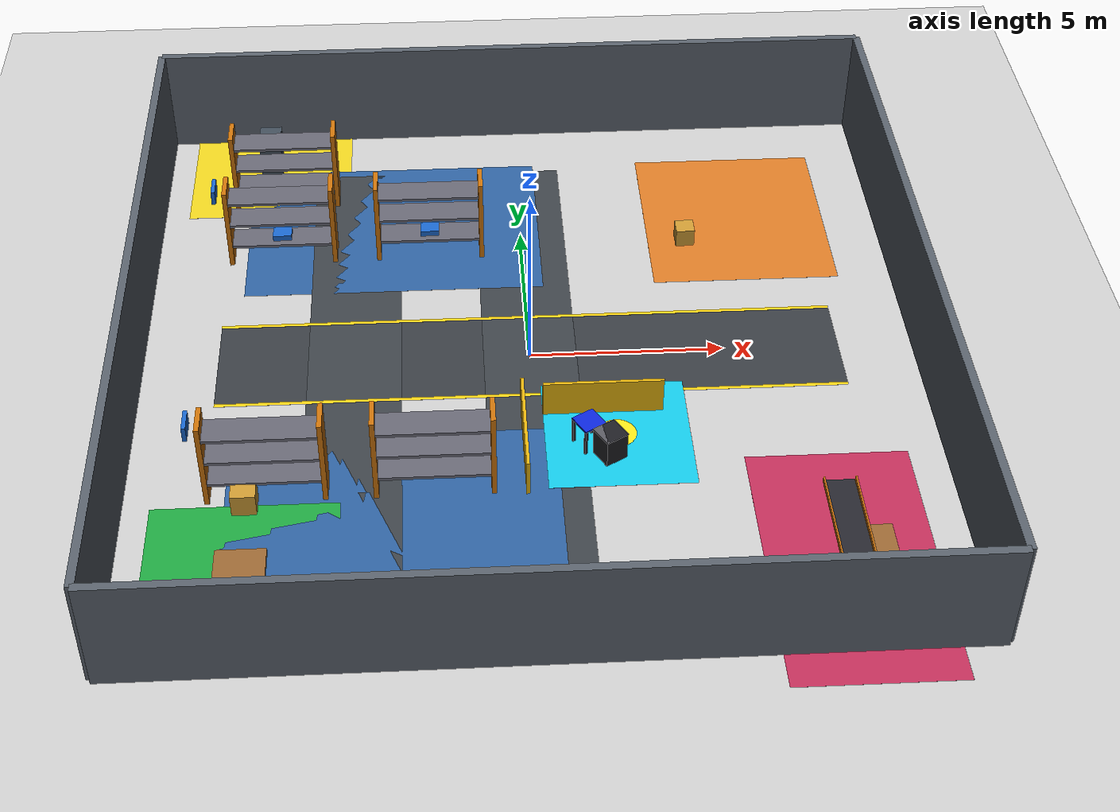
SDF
<sdf version="1.7">
 <world name="warehouse_remodel">
  <include><uri>model://sun</uri></include>
  <include><uri>model://ground_plane</uri></include>
  <model name="wall_left">
   <static>true</static>
   <link name="link">
    <collision name="collision"><geometry><box><size>20 0.2 3.0</size></box></geometry></collision>
    <visual name="visual">
     <geometry><box><size>20 0.2 3.0</size></box></geometry>
     <material><ambient>0.25 0.28 0.32 1</ambient><diffuse>0.35 0.38 0.42 1</diffuse></material>
    </visual>
    <pose>0 -10 1.5 0 0 0</pose>
   </link>
  </model>
  <model name="wall_right">
   <static>true</static>
   <link name="link">
    <collision name="collision"><geometry><box><size>20 0.2 3.0</size></box></geometry></collision>
    <visual name="visual">
     <geometry><box><size>20 0.2 3.0</size></box></geometry>
     <material><ambient>0.25 0.28 0.32 1</ambient><diffuse>0.35 0.38 0.42 1</diffuse></material>
    </visual>
    <pose>0 10 1.5 0 0 0</pose>
   </link>
  </model>
  <model name="wall_front">
   <static>true</static>
   <link name="link">
    <collision name="collision"><geometry><box><size>0.2 20 3.0</size></box></geometry></collision>
    <visual name="visual">
     <geometry><box><size>0.2 20 3.0</size></box></geometry>
     <material><ambient>0.25 0.28 0.32 1</ambient><diffuse>0.35 0.38 0.42 1</diffuse></material>
    </visual>
    <pose>10 0 1.5 0 0 0</pose>
   </link>
  </model>
  <model name="wall_back">
   <static>true</static>
   <link name="link">
    <collision name="collision"><geometry><box><size>0.2 20 3.0</size></box></geometry></collision>
    <visual name="visual">
     <geometry><box><size>0.2 20 3.0</size></box></geometry>
     <material><ambient>0.25 0.28 0.32 1</ambient><diffuse>0.35 0.38 0.42 1</diffuse></material>
    </visual>
    <pose>-10 0 1.5 0 0 0</pose>
   </link>
  </model>
  <model name="marking_main_aisle">
   <static>true</static>
   <pose>0 0 0.005 0 0 0</pose>
   <link name="link">
    <visual name="visual">
     <geometry><box><size>16.0 3.0 0.002</size></box></geometry>
     <material><ambient>0.15 0.16 0.18 1</ambient><diffuse>0.22 0.24 0.26 1</diffuse></material>
    </visual>
   </link>
  </model>
  <model name="marking_aisle_line_north">
   <static>true</static>
   <pose>0 1.5 0.007 0 0 0</pose>
   <link name="link">
    <visual name="visual">
     <geometry><box><size>16.0 0.10 0.002</size></box></geometry>
     <material><ambient>0.90 0.75 0.05 1</ambient><diffuse>0.98 0.82 0.08 1</diffuse></material>
    </visual>
   </link>
  </model>
  <model name="marking_aisle_line_south">
   <static>true</static>
   <pose>0 -1.5 0.007 0 0 0</pose>
   <link name="link">
    <visual name="visual">
     <geometry><box><size>16.0 0.10 0.002</size></box></geometry>
     <material><ambient>0.90 0.75 0.05 1</ambient><diffuse>0.98 0.82 0.08 1</diffuse></material>
    </visual>
   </link>
  </model>
  <model name="marking_cross_aisle_1">
   <static>true</static>
   <pose>0 0 0.006 0 0 0</pose>
   <link name="link">
    <visual name="visual">
     <geometry><box><size>2.4 16.0 0.002</size></box></geometry>
     <material><ambient>0.18 0.19 0.22 1</ambient><diffuse>0.24 0.26 0.28 1</diffuse></material>
    </visual>
   </link>
  </model>
  <model name="marking_cross_aisle_2">
   <static>true</static>
   <pose>-4.5 0 0.006 0 0 0</pose>
   <link name="link">
    <visual name="visual">
     <geometry><box><size>2.4 16.0 0.002</size></box></geometry>
     <material><ambient>0.18 0.19 0.22 1</ambient><diffuse>0.24 0.26 0.28 1</diffuse></material>
    </visual>
   </link>
  </model>
  <model name="marking_receiving_zone">
   <static>true</static>
   <pose>-7.0 -7.5 0.006 0 0 0</pose>
   <link name="link">
    <visual name="visual">
     <geometry><box><size>4.5 5.0 0.002</size></box></geometry>
     <material><ambient>0.08 0.45 0.18 1</ambient><diffuse>0.12 0.65 0.25 1</diffuse></material>
    </visual>
   </link>
  </model>
  <model name="marking_picking_zone_north">
   <static>true</static>
   <pose>-3.5 5.5 0.006 0 0 0</pose>
   <link name="link">
    <visual name="visual">
     <geometry><box><size>8.0 5.5 0.002</size></box></geometry>
     <material><ambient>0.12 0.25 0.45 1</ambient><diffuse>0.18 0.38 0.62 1</diffuse></material>
    </visual>
   </link>
  </model>
  <model name="marking_picking_zone_south">
   <static>true</static>
   <pose>-3.5 -5.5 0.006 0 0 0</pose>
   <link name="link">
    <visual name="visual">
     <geometry><box><size>8.0 5.5 0.002</size></box></geometry>
     <material><ambient>0.12 0.25 0.45 1</ambient><diffuse>0.18 0.38 0.62 1</diffuse></material>
    </visual>
   </link>
  </model>
  <model name="marking_packing_zone">
   <static>true</static>
   <pose>6.0 5.5 0.006 0 0 0</pose>
   <link name="link">
    <visual name="visual">
     <geometry><box><size>5.0 5.5 0.002</size></box></geometry>
     <material><ambient>0.65 0.35 0.10 1</ambient><diffuse>0.85 0.48 0.15 1</diffuse></material>
    </visual>
   </link>
  </model>
  <model name="marking_delivery_zone">
   <static>true</static>
   <pose>7.0 -7.5 0.006 0 0 0</pose>
   <link name="link">
    <visual name="visual">
     <geometry><box><size>4.0 7.0 0.002</size></box></geometry>
     <material><ambient>0.55 0.12 0.25 1</ambient><diffuse>0.75 0.18 0.35 1</diffuse></material>
    </visual>
   </link>
  </model>
  <model name="marking_charging_zone">
   <static>true</static>
   <pose>-7.0 8.5 0.006 0 0 0</pose>
   <link name="link">
    <visual name="visual">
     <geometry><box><size>4.5 4.5 0.002</size></box></geometry>
     <material><ambient>0.75 0.65 0.08 1</ambient><diffuse>0.92 0.82 0.12 1</diffuse></material>
    </visual>
   </link>
  </model>
  <model name="marking_handover_workcell">
   <static>true</static>
   <pose>2.0 -3.0 0.008 0 0 0</pose>
   <link name="link">
    <visual name="visual">
     <geometry><box><size>3.6 3.6 0.002</size></box></geometry>
     <material><ambient>0.05 0.55 0.65 1</ambient><diffuse>0.08 0.78 0.90 1</diffuse></material>
    </visual>
   </link>
  </model>
  <model name="marking_handover_target_pad">
   <static>true</static>
   <pose>2.0 -3.0 0.010 0 0 0</pose>
   <link name="link">
    <visual name="visual">
     <geometry><cylinder><radius>0.48</radius><length>0.004</length></cylinder></geometry>
     <material><ambient>0.95 0.85 0.05 1</ambient><diffuse>1.00 0.90 0.10 1</diffuse></material>
    </visual>
   </link>
  </model>
  <model name="shelf_a1">
   <static>true</static>
   <pose>-6.5 4.5 0 0 0 0</pose>
   <link name="collision_link">
    <collision name="collision"><geometry><box><size>3.0 0.8 2.4</size></box></geometry></collision>
   </link>
   <link name="frame_left">
    <visual name="visual">
     <geometry><box><size>0.12 0.8 2.4</size></box></geometry>
     <pose>-1.4 0 1.2 0 0 0</pose>
     <material><ambient>0.80 0.45 0.04 1</ambient></material>
    </visual>
   </link>
   <link name="frame_right">
    <visual name="visual">
     <geometry><box><size>0.12 0.8 2.4</size></box></geometry>
     <pose>1.4 0 1.2 0 0 0</pose>
     <material><ambient>0.80 0.45 0.04 1</ambient></material>
    </visual>
   </link>
   <link name="shelf_beam_1">
    <visual name="visual">
     <geometry><box><size>2.8 0.75 0.08</size></box></geometry>
     <pose>0 0 0.6 0 0 0</pose>
     <material><ambient>0.4 0.4 0.45 1</ambient></material>
    </visual>
   </link>
   <link name="shelf_beam_2">
    <visual name="visual">
     <geometry><box><size>2.8 0.75 0.08</size></box></geometry>
     <pose>0 0 1.3 0 0 0</pose>
     <material><ambient>0.4 0.4 0.45 1</ambient></material>
    </visual>
   </link>
   <link name="shelf_beam_3">
    <visual name="visual">
     <geometry><box><size>2.8 0.75 0.08</size></box></geometry>
     <pose>0 0 2.0 0 0 0</pose>
     <material><ambient>0.4 0.4 0.45 1</ambient></material>
    </visual>
   </link>
  </model>
  <model name="shelf_a2">
   <static>true</static>
   <pose>-2.5 4.5 0 0 0 0</pose>
   <link name="collision_link">
    <collision name="collision"><geometry><box><size>3.0 0.8 2.4</size></box></geometry></collision>
   </link>
   <link name="frame_left">
    <visual name="visual">
     <geometry><box><size>0.12 0.8 2.4</size></box></geometry>
     <pose>-1.4 0 1.2 0 0 0</pose>
     <material><ambient>0.80 0.45 0.04 1</ambient></material>
    </visual>
   </link>
   <link name="frame_right">
    <visual name="visual">
     <geometry><box><size>0.12 0.8 2.4</size></box></geometry>
     <pose>1.4 0 1.2 0 0 0</pose>
     <material><ambient>0.80 0.45 0.04 1</ambient></material>
    </visual>
   </link>
   <link name="shelf_beam_1">
    <visual name="visual">
     <geometry><box><size>2.8 0.75 0.08</size></box></geometry>
     <pose>0 0 0.6 0 0 0</pose>
     <material><ambient>0.4 0.4 0.45 1</ambient></material>
    </visual>
   </link>
   <link name="shelf_beam_2">
    <visual name="visual">
     <geometry><box><size>2.8 0.75 0.08</size></box></geometry>
     <pose>0 0 1.3 0 0 0</pose>
     <material><ambient>0.4 0.4 0.45 1</ambient></material>
    </visual>
   </link>
   <link name="shelf_beam_3">
    <visual name="visual">
     <geometry><box><size>2.8 0.75 0.08</size></box></geometry>
     <pose>0 0 2.0 0 0 0</pose>
     <material><ambient>0.4 0.4 0.45 1</ambient></material>
    </visual>
   </link>
  </model>
  <model name="shelf_a3">
   <static>true</static>
   <pose>-6.5 7.0 0 0 0 0</pose>
   <link name="collision_link">
    <collision name="collision"><geometry><box><size>3.0 0.8 2.4</size></box></geometry></collision>
   </link>
   <link name="frame_left">
    <visual name="visual">
     <geometry><box><size>0.12 0.8 2.4</size></box></geometry>
     <pose>-1.4 0 1.2 0 0 0</pose>
     <material><ambient>0.80 0.45 0.04 1</ambient></material>
    </visual>
   </link>
   <link name="frame_right">
    <visual name="visual">
     <geometry><box><size>0.12 0.8 2.4</size></box></geometry>
     <pose>1.4 0 1.2 0 0 0</pose>
     <material><ambient>0.80 0.45 0.04 1</ambient></material>
    </visual>
   </link>
   <link name="shelf_beam_1">
    <visual name="visual">
     <geometry><box><size>2.8 0.75 0.08</size></box></geometry>
     <pose>0 0 0.6 0 0 0</pose>
     <material><ambient>0.4 0.4 0.45 1</ambient></material>
    </visual>
   </link>
   <link name="shelf_beam_2">
    <visual name="visual">
     <geometry><box><size>2.8 0.75 0.08</size></box></geometry>
     <pose>0 0 1.3 0 0 0</pose>
     <material><ambient>0.4 0.4 0.45 1</ambient></material>
    </visual>
   </link>
   <link name="shelf_beam_3">
    <visual name="visual">
     <geometry><box><size>2.8 0.75 0.08</size></box></geometry>
     <pose>0 0 2.0 0 0 0</pose>
     <material><ambient>0.4 0.4 0.45 1</ambient></material>
    </visual>
   </link>
  </model>
  <model name="shelf_b1">
   <static>true</static>
   <pose>-6.5 -4.5 0 0 0 0</pose>
   <link name="collision_link">
    <collision name="collision"><geometry><box><size>3.0 0.8 2.4</size></box></geometry></collision>
   </link>
   <link name="frame_left">
    <visual name="visual">
     <geometry><box><size>0.12 0.8 2.4</size></box></geometry>
     <pose>-1.4 0 1.2 0 0 0</pose>
     <material><ambient>0.80 0.45 0.04 1</ambient></material>
    </visual>
   </link>
   <link name="frame_right">
    <visual name="visual">
     <geometry><box><size>0.12 0.8 2.4</size></box></geometry>
     <pose>1.4 0 1.2 0 0 0</pose>
     <material><ambient>0.80 0.45 0.04 1</ambient></material>
    </visual>
   </link>
   <link name="shelf_beam_1">
    <visual name="visual">
     <geometry><box><size>2.8 0.75 0.08</size></box></geometry>
     <pose>0 0 0.6 0 0 0</pose>
     <material><ambient>0.4 0.4 0.45 1</ambient></material>
    </visual>
   </link>
   <link name="shelf_beam_2">
    <visual name="visual">
     <geometry><box><size>2.8 0.75 0.08</size></box></geometry>
     <pose>0 0 1.3 0 0 0</pose>
     <material><ambient>0.4 0.4 0.45 1</ambient></material>
    </visual>
   </link>
   <link name="shelf_beam_3">
    <visual name="visual">
     <geometry><box><size>2.8 0.75 0.08</size></box></geometry>
     <pose>0 0 2.0 0 0 0</pose>
     <material><ambient>0.4 0.4 0.45 1</ambient></material>
    </visual>
   </link>
  </model>
  <model name="shelf_b2">
   <static>true</static>
   <pose>-2.5 -4.5 0 0 0 0</pose>
   <link name="collision_link">
    <collision name="collision"><geometry><box><size>3.0 0.8 2.4</size></box></geometry></collision>
   </link>
   <link name="frame_left">
    <visual name="visual">
     <geometry><box><size>0.12 0.8 2.4</size></box></geometry>
     <pose>-1.4 0 1.2 0 0 0</pose>
     <material><ambient>0.80 0.45 0.04 1</ambient></material>
    </visual>
   </link>
   <link name="frame_right">
    <visual name="visual">
     <geometry><box><size>0.12 0.8 2.4</size></box></geometry>
     <pose>1.4 0 1.2 0 0 0</pose>
     <material><ambient>0.80 0.45 0.04 1</ambient></material>
    </visual>
   </link>
   <link name="shelf_beam_1">
    <visual name="visual">
     <geometry><box><size>2.8 0.75 0.08</size></box></geometry>
     <pose>0 0 0.6 0 0 0</pose>
     <material><ambient>0.4 0.4 0.45 1</ambient></material>
    </visual>
   </link>
   <link name="shelf_beam_2">
    <visual name="visual">
     <geometry><box><size>2.8 0.75 0.08</size></box></geometry>
     <pose>0 0 1.3 0 0 0</pose>
     <material><ambient>0.4 0.4 0.45 1</ambient></material>
    </visual>
   </link>
   <link name="shelf_beam_3">
    <visual name="visual">
     <geometry><box><size>2.8 0.75 0.08</size></box></geometry>
     <pose>0 0 2.0 0 0 0</pose>
     <material><ambient>0.4 0.4 0.45 1</ambient></material>
    </visual>
   </link>
  </model>
  <model name="sign_rack_a">
   <static>true</static>
   <pose>-8.2 4.5 2.2 0 0 0</pose>
   <link name="link">
    <visual name="visual">
     <geometry><box><size>0.1 0.6 0.4</size></box></geometry>
     <material><ambient>0.1 0.4 0.8 1</ambient></material>
    </visual>
   </link>
  </model>
  <model name="sign_rack_b">
   <static>true</static>
   <pose>-8.2 -4.5 2.2 0 0 0</pose>
   <link name="link">
    <visual name="visual">
     <geometry><box><size>0.1 0.6 0.4</size></box></geometry>
     <material><ambient>0.1 0.4 0.8 1</ambient></material>
    </visual>
   </link>
  </model>
  <model name="table_bottle_handover">
   <static>true</static>
   <pose>1.260 -3.300 0 0 0 0.5236</pose>
   <link name="link">
    <collision name="top_col">
     <pose>0 0 0.735 0 0 0</pose>
     <geometry><box><size>0.6 0.6 0.05</size></box></geometry>
    </collision>
    <visual name="top_vis">
     <pose>0 0 0.735 0 0 0</pose>
     <geometry><box><size>0.6 0.6 0.05</size></box></geometry>
     <material><ambient>0.05 0.15 0.85 1</ambient><diffuse>0.05 0.15 0.85 1</diffuse></material>
    </visual>
    <collision name="leg1_col">
     <pose>0.265 0.265 0.365 0 0 0</pose>
     <geometry><box><size>0.07 0.07 0.73</size></box></geometry>
    </collision>
    <visual name="leg1_vis">
     <pose>0.265 0.265 0.365 0 0 0</pose>
     <geometry><box><size>0.07 0.07 0.73</size></box></geometry>
     <material><ambient>0.10 0.10 0.12 1</ambient><diffuse>0.10 0.10 0.12 1</diffuse></material>
    </visual>
    <collision name="leg2_col">
     <pose>-0.265 0.265 0.365 0 0 0</pose>
     <geometry><box><size>0.07 0.07 0.73</size></box></geometry>
    </collision>
    <visual name="leg2_vis">
     <pose>-0.265 0.265 0.365 0 0 0</pose>
     <geometry><box><size>0.07 0.07 0.73</size></box></geometry>
     <material><ambient>0.10 0.10 0.12 1</ambient><diffuse>0.10 0.10 0.12 1</diffuse></material>
    </visual>
    <collision name="leg3_col">
     <pose>0.265 -0.265 0.365 0 0 0</pose>
     <geometry><box><size>0.07 0.07 0.73</size></box></geometry>
    </collision>
    <visual name="leg3_vis">
     <pose>0.265 -0.265 0.365 0 0 0</pose>
     <geometry><box><size>0.07 0.07 0.73</size></box></geometry>
     <material><ambient>0.10 0.10 0.12 1</ambient><diffuse>0.10 0.10 0.12 1</diffuse></material>
    </visual>
    <collision name="leg4_col">
     <pose>-0.265 -0.265 0.365 0 0 0</pose>
     <geometry><box><size>0.07 0.07 0.73</size></box></geometry>
    </collision>
    <visual name="leg4_vis">
     <pose>-0.265 -0.265 0.365 0 0 0</pose>
     <geometry><box><size>0.07 0.07 0.73</size></box></geometry>
     <material><ambient>0.10 0.10 0.12 1</ambient><diffuse>0.10 0.10 0.12 1</diffuse></material>
    </visual>
   </link>
  </model>
  <model name="table_ur5e_handover">
   <static>true</static>
   <pose>1.750 -3.737 0 0 0 0.5236</pose>
   <link name="link">
    <collision name="pedestal_col">
     <pose>0 0 0.39 0 0 0</pose>
     <geometry><box><size>0.6 0.6 0.78</size></box></geometry>
    </collision>
    <visual name="pedestal_vis">
     <pose>0 0 0.39 0 0 0</pose>
     <geometry><box><size>0.6 0.6 0.78</size></box></geometry>
     <material><ambient>0.12 0.12 0.14 1</ambient><diffuse>0.12 0.12 0.14 1</diffuse></material>
    </visual>
    <visual name="top_plate_vis">
     <pose>0 0 0.77 0 0 0</pose>
     <geometry><box><size>0.62 0.62 0.02</size></box></geometry>
     <material><ambient>0.35 0.35 0.38 1</ambient><diffuse>0.35 0.35 0.38 1</diffuse></material>
    </visual>
   </link>
  </model>
  <model name="conveyor_delivery">
   <static>true</static>
   <pose>7.0 -7.5 0.0 0 0 1.5708</pose>
   <link name="link">
    <collision name="collision">
     <geometry><box><size>4.0 0.8 0.65</size></box></geometry>
     <pose>0 0 0.325 0 0 0</pose>
    </collision>
    <visual name="belt">
     <geometry><box><size>4.0 0.7 0.04</size></box></geometry>
     <pose>0 0 0.63 0 0 0</pose>
     <material><ambient>0.10 0.10 0.12 1</ambient><diffuse>0.15 0.15 0.18 1</diffuse></material>
    </visual>
    <visual name="side_rail_left">
     <geometry><box><size>4.0 0.04 0.15</size></box></geometry>
     <pose>0 -0.38 0.68 0 0 0</pose>
     <material><ambient>0.8 0.45 0.05 1</ambient></material>
    </visual>
    <visual name="side_rail_right">
     <geometry><box><size>4.0 0.04 0.15</size></box></geometry>
     <pose>0 0.38 0.68 0 0 0</pose>
     <material><ambient>0.8 0.45 0.05 1</ambient></material>
    </visual>
   </link>
  </model>
  <model name="amr_charger_dock">
   <static>true</static>
   <pose>-7.0 8.5 0.0 0 0 0</pose>
   <link name="link">
    <collision name="collision">
     <geometry><box><size>0.6 0.8 1.2</size></box></geometry>
     <pose>0 0 0.6 0 0 0</pose>
    </collision>
    <visual name="housing">
     <geometry><box><size>0.6 0.8 1.2</size></box></geometry>
     <pose>0 0 0.6 0 0 0</pose>
     <material><ambient>0.15 0.18 0.22 1</ambient><diffuse>0.25 0.30 0.35 1</diffuse></material>
    </visual>
    <visual name="screen">
     <geometry><box><size>0.02 0.4 0.3</size></box></geometry>
     <pose>-0.301 0 0.9 0 0 0</pose>
     <material><ambient>0.0 0.8 0.9 1</ambient><diffuse>0.0 0.9 1.0 1</diffuse></material>
    </visual>
   </link>
  </model>
  <model name="safety_barrier_west">
   <static>true</static>
   <pose>-0.300 -3.450 0 0 0 1.5708</pose>
   <link name="link">
    <collision name="collision">
     <geometry><box><size>3.0 0.1 1.0</size></box></geometry>
     <pose>0 0 0.5 0 0 0</pose>
    </collision>
    <visual name="rail">
     <geometry><box><size>3.0 0.08 1.0</size></box></geometry>
     <pose>0 0 0.5 0 0 0</pose>
     <material><ambient>0.9 0.7 0.05 1</ambient></material>
    </visual>
   </link>
  </model>
  <model name="safety_barrier_north">
   <static>true</static>
   <pose>1.700 -2.200 0 0 0 0.0000</pose>
   <link name="link">
    <collision name="collision">
     <geometry><box><size>3.0 0.1 1.0</size></box></geometry>
     <pose>0 0 0.5 0 0 0</pose>
    </collision>
    <visual name="rail">
     <geometry><box><size>3.0 0.08 1.0</size></box></geometry>
     <pose>0 0 0.5 0 0 0</pose>
     <material><ambient>0.9 0.7 0.05 1</ambient></material>
    </visual>
   </link>
  </model>
  <model name="pallet_1">
   <static>true</static>
   <pose>-7.0 -7.0 0.0 0 0 0</pose>
   <link name="link">
    <collision name="collision">
     <geometry><box><size>1.2 1.0 0.15</size></box></geometry>
     <pose>0 0 0.075 0 0 0</pose>
    </collision>
    <visual name="visual">
     <geometry><box><size>1.2 1.0 0.15</size></box></geometry>
     <pose>0 0 0.075 0 0 0</pose>
     <material><ambient>0.6 0.4 0.2 1</ambient></material>
    </visual>
   </link>
  </model>
  <model name="pallet_2">
   <static>true</static>
   <pose>7.5 -7.0 0.0 0 0 0</pose>
   <link name="link">
    <collision name="collision">
     <geometry><box><size>1.2 1.0 0.15</size></box></geometry>
     <pose>0 0 0.075 0 0 0</pose>
    </collision>
    <visual name="visual">
     <geometry><box><size>1.2 1.0 0.15</size></box></geometry>
     <pose>0 0 0.075 0 0 0</pose>
     <material><ambient>0.6 0.4 0.2 1</ambient></material>
    </visual>
   </link>
  </model>
  <model name="tote_1">
   <static>true</static>
   <pose>-6.5 4.5 0.65 0 0 0</pose>
   <link name="link">
    <visual name="visual">
     <geometry><box><size>0.5 0.4 0.3</size></box></geometry>
     <material><ambient>0.1 0.4 0.8 1</ambient></material>
    </visual>
   </link>
  </model>
  <model name="tote_2">
   <static>true</static>
   <pose>-2.5 4.5 0.65 0 0 0</pose>
   <link name="link">
    <visual name="visual">
     <geometry><box><size>0.5 0.4 0.3</size></box></geometry>
     <material><ambient>0.1 0.4 0.8 1</ambient></material>
    </visual>
   </link>
  </model>
  <model name="box_1">
   <static>true</static>
   <pose>-7.0 -5.0 0.3 0 0 0</pose>
   <link name="link">
    <collision name="collision"><geometry><box><size>0.6 0.6 0.6</size></box></geometry></collision>
    <visual name="visual">
     <geometry><box><size>0.6 0.6 0.6</size></box></geometry>
     <material><ambient>0.80 0.60 0.20 1</ambient></material>
    </visual>
   </link>
  </model>
  <model name="box_2">
   <static>true</static>
   <pose>4.5 4.5 0.3 0 0 0</pose>
   <link name="link">
    <collision name="collision"><geometry><box><size>0.5 0.5 0.5</size></box></geometry></collision>
    <visual name="visual">
     <geometry><box><size>0.5 0.5 0.5</size></box></geometry>
     <material><ambient>0.80 0.60 0.20 1</ambient></material>
    </visual>
   </link>
  </model>
 </world>
</sdf>
